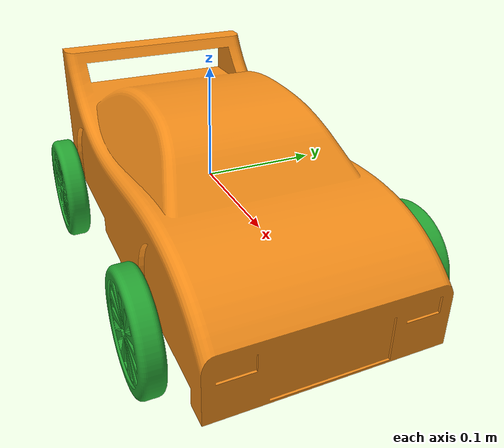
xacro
<?xml version='1.0'?>

<robot name="test_bot" xmlns:xacro="http://www.ros.org/wiki/xacro">

  <!-- RViz colors -->
  <xacro:include filename="$(find urdf_examples)/urdf/materials.xacro" />

  <!-- Include wheel macros -->
  <xacro:include filename="$(find urdf_examples)/urdf/wheel.xacro" />

  <!-- Pi -->
  <xacro:property name="M_PI" value="3.14159"/>

  <!-- Base Size -->
  <xacro:property name="base_x_size" value="0.4" />
  <xacro:property name="base_y_size" value="0.2" />
  <xacro:property name="base_z_size" value="0.15" />

  <!-- Wheel Mounting Positions -->
  <xacro:property name="wheelbase" value="0.24" />
  <xacro:property name="track" value="0.24" />
  <xacro:property name="wheel_vertical_offset" value="-0.05" />

  <!-- Wheel Properties -->
  <xacro:property name="wheel_length" value="0.02" />
  <xacro:property name="wheel_radius" value="0.05" />

  <link name="base_footprint"></link>

  <joint name="base_footprint_joint" type="fixed">
    <origin xyz="0 0 0" rpy="0 0 0" />
    <parent link="base_footprint"/>
    <child link="base_link" />
  </joint>

  <!-- Robot chassis -->
  <link name='base_link'>
    <pose>0 0 0.1 0 0 0</pose>

    <inertial>
      <mass value="15.0"/>
      <origin xyz="0.0 0 0" rpy="0 0 0"/>
      <inertia
          ixx="0.1" ixy="0" ixz="0"
          iyy="0.1" iyz="0"
          izz="0.1"
      />
    </inertial>

    <collision name='collision'>
      <origin xyz="0 0 0" rpy="0 0 0"/>
      <geometry>
        <box size="${base_x_size} ${base_y_size} ${base_z_size}"/>
      </geometry>
    </collision>

    <visual name='base_link_visual'>
      <origin xyz="0 0 0" rpy="0 0 0"/>
      <geometry>
        <!--box size="${base_x_size} ${base_y_size} ${base_z_size}"/-->
        <mesh filename = "package://urdf_examples/meshes/base_link.dae"/>
      </geometry>
      <material name="orange"/>
    </visual>

  </link>

  <!-- Wheel macros -->
  <xacro:test_wheel wheel_prefix="front_left">
    <origin xyz="${wheelbase/2} ${track/2} ${wheel_vertical_offset}" rpy="0 0 0" />
  </xacro:test_wheel>
  <xacro:test_wheel wheel_prefix="front_right">
    <origin xyz="${wheelbase/2} ${-track/2} ${wheel_vertical_offset}" rpy="0 0 0" />
  </xacro:test_wheel>
  <xacro:test_wheel wheel_prefix="rear_left">
    <origin xyz="${-wheelbase/2} ${track/2} ${wheel_vertical_offset}" rpy="0 0 0" />
  </xacro:test_wheel>
  <xacro:test_wheel wheel_prefix="rear_right">
    <origin xyz="${-wheelbase/2} ${-track/2} ${wheel_vertical_offset}" rpy="0 0 0" />
  </xacro:test_wheel>

</robot>

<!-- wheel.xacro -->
<robot xmlns:xacro="http://ros.org/wiki/xacro" name="test_wheel">

	<xacro:macro name="test_wheel" params="wheel_prefix *joint_pose">
		<link name="${wheel_prefix}_wheel_link">
			<inertial>
				<mass value="2.637" />
				<origin xyz="0 0 0" rpy="0 ${M_PI/2} ${M_PI/2}"/>
				<inertia  ixx="0.02467" ixy="0" ixz="0" iyy="0.04411" iyz="0" izz="0.02467" />
			</inertial>
			<visual>
				<origin xyz="0 0 0" rpy="0 ${M_PI/2} ${M_PI/2}" />
				<geometry>
                    <!--cylinder length="${wheel_length}" radius="${wheel_radius}" /-->
                    <mesh filename = "package://urdf_examples/meshes/wheel.dae"/>
				</geometry>
                <material name="green"/>
			</visual>
			<collision>
				<origin xyz="0 0 0" rpy="0 ${M_PI/2} ${M_PI/2}" />
				<geometry>
					<cylinder length="${wheel_length}" radius="${wheel_radius}" />
				</geometry>
			</collision>
		</link>

		<gazebo reference="${wheel_prefix}_wheel_link">
			<mu1 value="1.0"/>
			<mu2 value="1.0"/>
			<kp value="10000000.0" />
			<kd value="1.0" />
			<fdir1 value="1 0 0"/>
		</gazebo>

		<joint name="${wheel_prefix}_wheel" type="continuous">
			<parent link="base_link"/>
			<child link="${wheel_prefix}_wheel_link"/>
			<xacro:insert_block name="joint_pose"/>
			<axis xyz="0 1 0" rpy="0 0 0" />
		</joint>

	</xacro:macro>
</robot>
